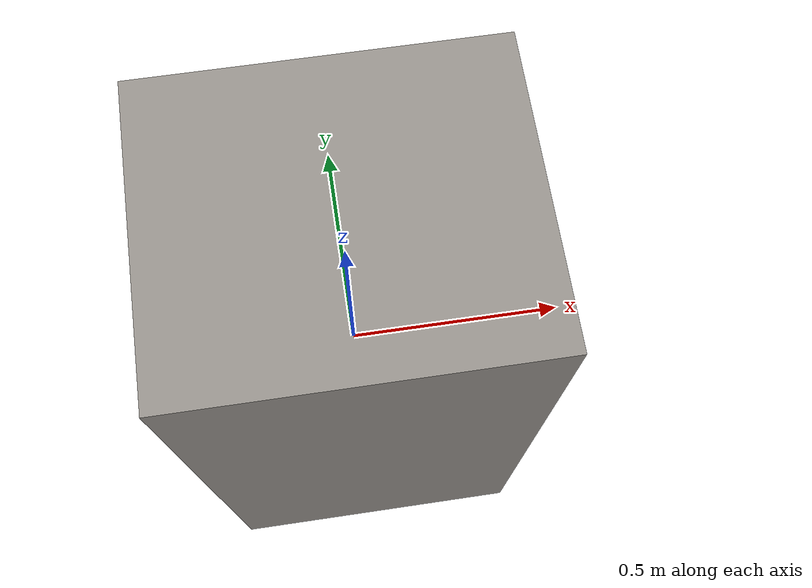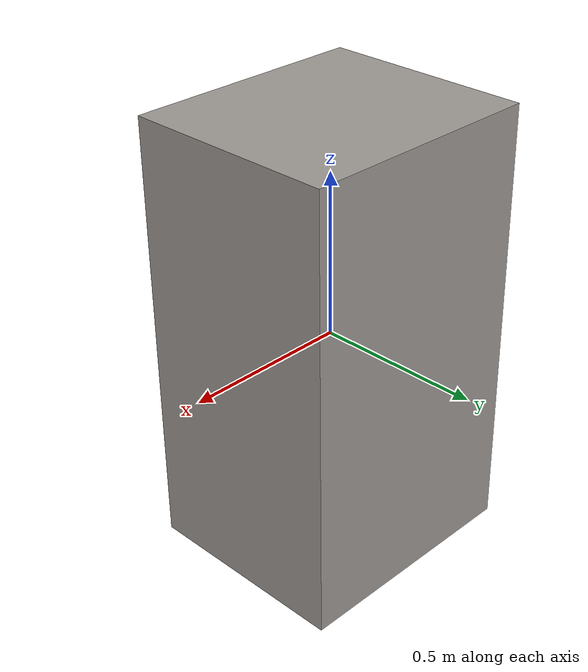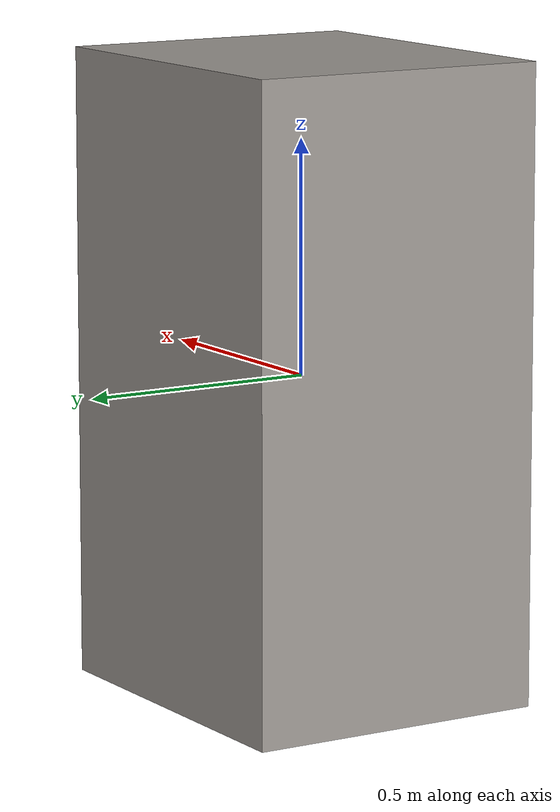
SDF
<?xml version="1.0"?>
<sdf version="1.6">
  <model name="AnesthesiaMachine">
    <static>true</static>
    <link name="link">
      <collision name="col">
        <geometry>
          <box>
            <size>0.75 0.65 1.35</size>
          </box>
        </geometry>
      </collision>
      <visual name="vis">
        <geometry>
          <box>
            <size>0.75 0.65 1.35</size>
          </box>
        </geometry>
        <material>
          <ambient>0.62 0.6 0.58 1</ambient>
          <diffuse>0.62 0.6 0.58 1</diffuse>
        </material>
      </visual>
    </link>
  </model>
</sdf>
